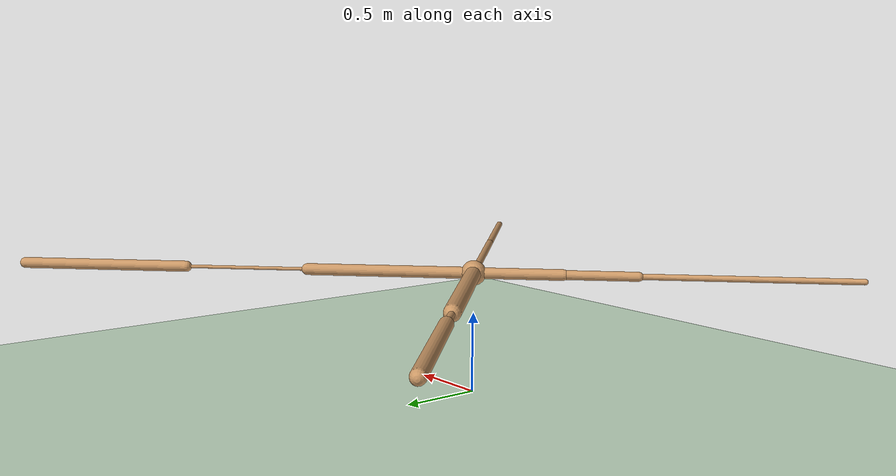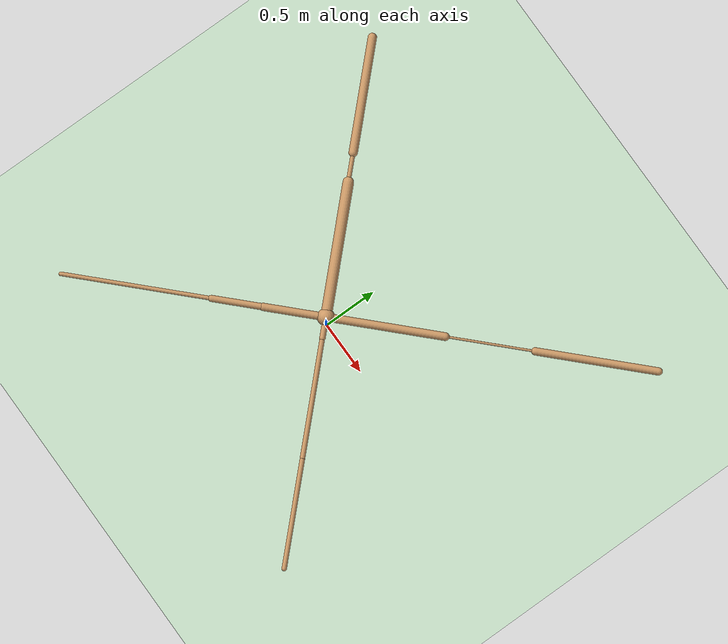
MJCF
<mujoco model="ant">
  <compiler angle="degree" coordinate="local" inertiafromgeom="true" />
  <option integrator="RK4" timestep="0.01" />
  <custom>
    <numeric data="0.0 0.0 0.55 1.0 0.0 0.0 0.0 0.0 1.0 0.0 -1.0 0.0 -1.0 0.0 1.0" name="init_qpos" />
  </custom>
  <default>
    <joint armature="1" damping="1" limited="true" />
    <geom conaffinity="0" condim="3" density="5.0" friction="1 0.5 0.5" margin="0.01" rgba="0.8 0.6 0.4 1" />
  </default>
  <asset>
    <texture builtin="gradient" height="100" rgb1="1 1 1" rgb2="0 0 0" type="skybox" width="100" />
    <texture builtin="flat" height="1278" mark="cross" markrgb="1 1 1" name="texgeom" random="0.01" rgb1="0.8 0.6 0.4" rgb2="0.8 0.6 0.4" type="cube" width="127" />
    <texture builtin="checker" height="100" name="texplane" rgb1="0 0 0" rgb2="0.8 0.8 0.8" type="2d" width="100" />
    <material name="MatPlane" reflectance="0.5" shininess="1" specular="1" texrepeat="60 60" texture="texplane" />
    <material name="geom" texture="texgeom" texuniform="true" />
  </asset>
  <worldbody>
    <light cutoff="100" diffuse="1 1 1" dir="-0 0 -1.3" directional="true" exponent="1" pos="0 0 1.3" specular=".1 .1 .1" />
    <geom conaffinity="1" condim="3" material="MatPlane" name="floor" pos="0 0 0" rgba="0.8 0.9 0.8 1" size="40 40 40" type="plane" />
    <body name="torso" pos="0 0 0.75">
      <camera name="track" mode="trackcom" pos="0 -11 5" xyaxes="1 0 0 0 0.5 1" />
      <geom name="torso_geom" pos="0 0 0" size="0.07714780420064926" type="sphere" />
      <joint armature="0" damping="0" limited="false" margin="0.01" name="root" pos="0 0 0" type="free" />
      <body name="front_left_leg" pos="0 0 0">
        <geom fromto="0 0 0 0.7330247163772583 0.7330247163772583 0" name="aux_1_geom" size="0.03601570799946785" type="capsule" />
        <body name="aux_1" pos="0.7330247163772583 0.7330247163772583 0">
          <joint axis="0 0 1" name="hip_1" pos="0.0 0.0 0.0" range="-30 30" type="hinge" />
          <geom fromto="0 0 0 0.5509559512138367 0.5509559512138367 0" name="left_leg_geom" size="0.010546477511525154" type="capsule" />
          <body name="left_leg_geom_aux" pos="0.5509559512138367 0.5509559512138367 0">
            <joint axis="-1 1 0" name="ankle_1" pos="0.0 0.0 0.0" range="30 70" type="hinge" />
            <geom fromto="0 0 0 0.7554045915603638 0.7554045915603638 0" name="left_ankle_geom" size="0.0339890755712986" type="capsule" />
          </body>
        </body>
      </body>
      <body name="front_right_leg" pos="0 0 0">
        <geom fromto="0 0 0 -0.8347645401954651 0.8347645401954651 0" name="aux_2_geom" size="0.04859146103262901" type="capsule" />
        <body name="aux_2" pos="-0.8347645401954651 0.8347645401954651 0">
          <joint axis="0 0 1" name="hip_2" pos="0.0 0.0 0.0" range="-30 30" type="hinge" />
          <geom fromto="0 0 0 -0.1833343803882599 0.1833343803882599 0" name="right_leg_geom" size="0.01983685977756977" type="capsule" />
          <body name="right_leg_geom_aux" pos="-0.1833343803882599 0.1833343803882599 0">
            <joint axis="1 1 0" name="ankle_2" pos="0.0 0.0 0.0" range="-70 -30" type="hinge" />
            <geom fromto="0 0 0 -0.7196941375732422 0.7196941375732422 0" name="right_ankle_geom" size="0.03929279372096062" type="capsule" />
          </body>
        </body>
      </body>
      <body name="back_leg" pos="0 0 0">
        <geom fromto="0 0 0 -0.3856324255466461 -0.3856324255466461 0" name="aux_3_geom" size="0.034213751554489136" type="capsule" />
        <body name="aux_3" pos="-0.3856324255466461 -0.3856324255466461 0">
          <joint axis="0 0 1" name="hip_3" pos="0.0 0.0 0.0" range="-30 30" type="hinge" />
          <geom fromto="0 0 0 -0.3185892105102539 -0.3185892105102539 0" name="back_leg_geom" size="0.029069434851408005" type="capsule" />
          <body name="back_leg_geom_aux" pos="-0.3185892105102539 -0.3185892105102539 0">
            <joint axis="-1 1 0" name="ankle_3" pos="0.0 0.0 0.0" range="-70 -30" type="hinge" />
            <geom fromto="0 0 0 -0.9247135519981384 -0.9247135519981384 0" name="third_ankle_geom" size="0.01836850494146347" type="capsule" />
          </body>
        </body>
      </body>
      <body name="right_back_leg" pos="0 0 0">
        <geom fromto="0 0 0 0.12995001673698425 -0.12995001673698425 0" name="aux_4_geom" size="0.02645844966173172" type="capsule" />
        <body name="aux_4" pos="0.12995001673698425 -0.12995001673698425 0">
          <joint axis="0 0 1" name="hip_4" pos="0.0 0.0 0.0" range="-30 30" type="hinge" />
          <geom fromto="0 0 0 0.735541045665741 -0.735541045665741 0" name="rightback_leg_geom" size="0.022738732397556305" type="capsule" />
          <body name="rightback_leg_geom_aux" pos="0.735541045665741 -0.735541045665741 0">
            <joint axis="1 1 0" name="ankle_4" pos="0.0 0.0 0.0" range="30 70" type="hinge" />
            <geom fromto="0 0 0 0.6743779182434082 -0.6743779182434082 0" name="fourth_ankle_geom" size="0.021962769329547882" type="capsule" />
          </body>
        </body>
      </body>
    </body>
  </worldbody>
  <actuator>
    <motor ctrllimited="true" ctrlrange="-1.0 1.0" joint="hip_4" gear="150" />
    <motor ctrllimited="true" ctrlrange="-1.0 1.0" joint="ankle_4" gear="150" />
    <motor ctrllimited="true" ctrlrange="-1.0 1.0" joint="hip_1" gear="150" />
    <motor ctrllimited="true" ctrlrange="-1.0 1.0" joint="ankle_1" gear="150" />
    <motor ctrllimited="true" ctrlrange="-1.0 1.0" joint="hip_2" gear="150" />
    <motor ctrllimited="true" ctrlrange="-1.0 1.0" joint="ankle_2" gear="150" />
    <motor ctrllimited="true" ctrlrange="-1.0 1.0" joint="hip_3" gear="150" />
    <motor ctrllimited="true" ctrlrange="-1.0 1.0" joint="ankle_3" gear="150" />
  </actuator>
</mujoco>
